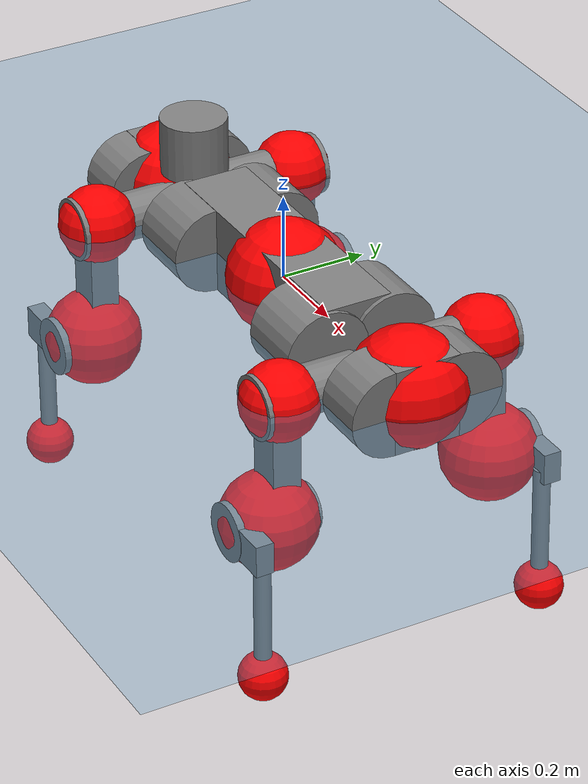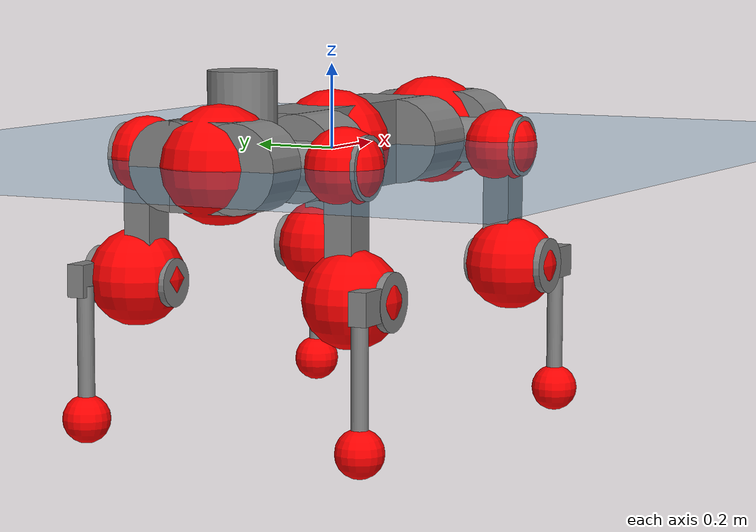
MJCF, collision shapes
<mujoco model="anymal_c">
  <compiler angle="radian" assetdir="assets" balanceinertia="true" inertiafromgeom="false"/>

  <option timestep="0.005" density="1.2" viscosity="2e-05"/>

  <size nkey="1"/>

  <visual>
    <quality shadowsize="8192"/>
    <map shadowclip="0.5"/>
  </visual>

  <default>
    <default class="/">
      <material specular="0" shininess="0.25"/>
      <geom contype="0" conaffinity="0" group="1" solref="-1000 -80"/>
      <site size="0.01 0.005 0.005" group="5"/>
      <general forcelimited="true" forcerange="-80 80" biastype="affine" gainprm="80" biasprm="0 -80 -2"/>
      <default class="anymal_c">
        <joint armature="0.01" damping="0.01" frictionloss="0.1"/>
        <default class="visual">
          <geom type="mesh" group="2"/>
          <default class="visual_zflip"/>
        </default>
        <default class="collision">
          <geom type="cylinder" group="3"/>
          <default class="foot">
            <geom size="0.03 0 0" type="sphere" condim="6" priority="1" friction="0.8 0.02 0.01" solimp="0.015 1 0.03"/>
          </default>
        </default>
      </default>
      <default class="reward_collision_sphere">
        <geom group="5" rgba="1 0 0 1"/>
      </default>
    </default>
  </default>

  <asset>
    <texture type="skybox" colorspace="auto" name="//unnamed_texture_0" builtin="gradient" rgb1="0.95 0.95 0.95" rgb2="0.95 0.95 0.95" width="100" height="600"/>
    <texture type="2d" colorspace="auto" name="texplane" builtin="checker" rgb1="0.345 0.575 0.748" rgb2="0.345 0.575 0.748" markrgb="1 1 1" width="512" height="512"/>
    <texture type="2d" colorspace="linear" name="base" file="base.png"/>
    <texture type="2d" colorspace="linear" name="top_shell" file="top_shell.png"/>
    <texture type="2d" colorspace="linear" name="bottom_shell" file="bottom_shell.png"/>
    <texture type="2d" colorspace="linear" name="remote" file="remote.png"/>
    <texture type="2d" colorspace="linear" name="hatch" file="hatch.png"/>
    <texture type="2d" colorspace="linear" name="handle" file="handle.png"/>
    <texture type="2d" colorspace="linear" name="face" file="face.png"/>
    <texture type="2d" colorspace="linear" name="battery" file="battery.png"/>
    <texture type="2d" colorspace="linear" name="lidar_cage" file="lidar_cage.png"/>
    <texture type="2d" colorspace="linear" name="depth_camera" file="depth_camera.png"/>
    <texture type="2d" colorspace="linear" name="wide_angle_camera" file="wide_angle_camera.png"/>
    <texture type="2d" colorspace="linear" name="lidar" file="lidar.png"/>
    <texture type="2d" colorspace="linear" name="drive" file="drive.png"/>
    <texture type="2d" colorspace="linear" name="hip_l" file="hip_l.png"/>
    <texture type="2d" colorspace="linear" name="shank_l" file="shank_l.png"/>
    <texture type="2d" colorspace="linear" name="foot" file="foot.png"/>
    <texture type="2d" colorspace="linear" name="thigh" file="thigh.png"/>
    <texture type="2d" colorspace="linear" name="shank_r" file="shank_r.png"/>
    <texture type="2d" colorspace="linear" name="hip_r" file="hip_r.png"/>
    <material name="MatPlane" class="/" texture="texplane" texuniform="true" texrepeat="2 2" specular="0.9" shininess="0.5"/>
    <material name="black_plastic" class="/" rgba="0.007 0.007 0.007 1"/>
    <material name="green" class="/" rgba="0.052 0.178 0.033 1"/>
    <material name="red" class="/" rgba="0.178 0.006 0.005 1"/>
    <material name="yellow" class="/" rgba="0.178 0.119 0.006 1"/>
    <material name="lwl" class="/" rgba="0.8 0.8 0.8 1"/>
    <material name="base" class="/" texture="base"/>
    <material name="top_shell" class="/" texture="top_shell"/>
    <material name="bottom_shell" class="/" texture="bottom_shell"/>
    <material name="hip_l" class="/" texture="hip_l"/>
    <material name="thigh" class="/" texture="thigh"/>
    <material name="shank_l" class="/" texture="shank_l"/>
    <material name="foot" class="/" texture="foot"/>
    <material name="hip_r" class="/" texture="hip_r"/>
    <material name="shank" class="/" texture="shank_r"/>
    <material name="hatch" class="/" texture="hatch"/>
    <material name="remote" class="/" texture="remote"/>
    <material name="handle" class="/" texture="handle"/>
    <material name="face" class="/" texture="face"/>
    <material name="depth_camera" class="/" texture="depth_camera"/>
    <material name="wide_angle_camera" class="/" texture="wide_angle_camera"/>
    <material name="battery" class="/" texture="battery"/>
    <material name="lidar_cage" class="/" texture="lidar_cage"/>
    <material name="lidar" class="/" texture="lidar"/>
    <material name="drive" class="/" texture="drive"/>
    <mesh name="base_0" class="/" file="base_0.obj"/>
    <mesh name="base_1" class="/" file="base_1.obj"/>
    <mesh name="base_2" class="/" file="base_2.obj"/>
    <mesh name="base_3" class="/" file="base_3.obj"/>
    <mesh name="base_4" class="/" file="base_4.obj"/>
    <mesh name="base_5" class="/" file="base_5.obj"/>
    <mesh name="top_shell" class="/" file="top_shell.obj"/>
    <mesh name="bottom_shell" class="/" file="bottom_shell.obj"/>
    <mesh name="remote" class="/" file="remote.obj"/>
    <mesh name="handle" class="/" file="handle.obj"/>
    <mesh name="face" class="/" file="face.obj"/>
    <mesh name="wide_angle_camera" class="/" file="wide_angle_camera.obj"/>
    <mesh name="depth_camera" class="/" file="depth_camera.obj"/>
    <mesh name="battery" class="/" file="battery.obj"/>
    <mesh name="lidar_cage" class="/" file="lidar_cage.obj"/>
    <mesh name="lidar" class="/" file="lidar.obj"/>
    <mesh name="drive" class="/" file="drive.obj"/>
    <mesh name="hip_l" class="/" file="hip_l.obj"/>
    <mesh name="thigh" class="/" file="thigh.obj"/>
    <mesh name="shank_l" class="/" file="shank_l.obj"/>
    <mesh name="foot" class="/" file="foot.obj"/>
    <mesh name="hip_r" class="/" file="hip_r.obj"/>
    <mesh name="hatch" class="/" file="hatch.obj"/>
    <mesh name="shank_r" class="/" file="shank_r.obj"/>
  </asset>

  <worldbody>
    <geom name="floor" class="/" size="100 100 0.125" type="plane" group="0" material="MatPlane"/>
    <light name="toplight_shadow" class="/" pos="0 0 5" dir="0.0990148 0.0990148 -0.990148" type="directional" ambient="0.04 0.04 0.04" diffuse="0.55 0.55 0.55" specular="0.12 0.12 0.12"/>
    <light name="toplight_fill" class="/" pos="0 0 5" dir="0.0990148 0.0990148 -0.990148" type="directional" castshadow="false" ambient="0.04 0.04 0.04" diffuse="0.3 0.3 0.3" specular="0.08 0.08 0.08"/>
    <body name="trunk" childclass="anymal_c" pos="0.00655033 0.000665664 0.00402162" quat="0.999996 0.00090791 -0.00205239 0.00163228">
      <inertial pos="0.00712682 -0.00453728 0.0483907" quat="0.527093 0.477608 0.509497 0.484228" mass="25.1816" diaginertia="1.16169 1.35865 0.18868"/>
      <joint name="//unnamed_joint_0" type="free" armature="0" damping="0" frictionloss="0"/>
      <geom name="//unnamed_geom_1" class="visual" material="green" mesh="base_0"/>
      <geom name="//unnamed_geom_2" class="visual" material="yellow" mesh="base_1"/>
      <geom name="//unnamed_geom_3" class="visual" material="red" mesh="base_2"/>
      <geom name="//unnamed_geom_4" class="visual" material="black_plastic" mesh="base_3"/>
      <geom name="//unnamed_geom_5" class="visual" material="lwl" mesh="base_4"/>
      <geom name="//unnamed_geom_6" class="visual" material="base" mesh="base_5"/>
      <geom name="trunk_1" class="collision" size="0.325995 0.0786884 0.101171" type="box"/>
      <geom name="trunk_2" class="collision" size="0.101171 0.0814987" pos="0.255737 0.0826036 0" quat="0.707107 0 0.707107 0"/>
      <geom name="trunk_3" class="collision" size="0.101171 0.0814987" pos="-0.255737 0.0826036 0" quat="0.707107 0 0.707107 0"/>
      <geom name="trunk_4" class="collision" size="0.101171 0.0814987" pos="0.255737 -0.0826036 0" quat="0.707107 0 0.707107 0"/>
      <geom name="trunk_5" class="collision" size="0.101171 0.0814987" pos="-0.255737 -0.0826036 0" quat="0.707107 0 0.707107 0"/>
      <geom name="//unnamed_geom_12" class="visual" material="top_shell" mesh="top_shell"/>
      <geom name="//unnamed_geom_13" class="visual" material="bottom_shell" mesh="bottom_shell"/>
      <geom name="//unnamed_geom_14" class="visual" material="remote" mesh="remote"/>
      <geom name="//unnamed_geom_15" class="visual" material="handle" mesh="handle"/>
      <geom name="//unnamed_geom_16" class="visual" pos="0.48737 0 0" quat="1 0 0 0" material="face" mesh="face"/>
      <geom name="trunk_6" class="collision" size="0.0618266 0.0786884 0.101171" pos="0.552039 0 0" type="box"/>
      <geom name="//unnamed_geom_18" class="collision" size="0.101171 0.0618266" pos="0.552039 0.0826036 0" quat="0.707107 0 0.707107 0"/>
      <geom name="//unnamed_geom_19" class="collision" size="0.101171 0.0618266" pos="0.552039 -0.0826036 0" quat="0.707107 0 0.707107 0"/>
      <geom name="//unnamed_geom_20" class="visual" pos="0.542802 0 -0.0284713" quat="0.965926 0 0.258819 0" material="depth_camera" mesh="depth_camera"/>
      <geom name="//unnamed_geom_21" class="visual" pos="0.603186 0 0.0152171" material="wide_angle_camera" mesh="wide_angle_camera"/>
      <geom name="//unnamed_geom_22" class="visual_zflip" pos="-0.48737 0 0" quat="0 0 0 1" material="face" mesh="face"/>
      <geom name="trunk_7" class="collision" size="0.0618266 0.0786884 0.101171" pos="-0.552039 0 0" quat="0 0 0 1" type="box"/>
      <geom name="//unnamed_geom_24" class="collision" size="0.101171 0.0618266" pos="-0.552039 -0.0826036 0" quat="0 -0.707107 0 0.707107"/>
      <geom name="//unnamed_geom_25" class="collision" size="0.101171 0.0618266" pos="-0.552039 0.0826036 0" quat="0 -0.707107 0 0.707107"/>
      <geom name="//unnamed_geom_26" class="visual" pos="-0.542802 0 -0.0284713" quat="0 -0.258819 0 0.965926" material="depth_camera" mesh="depth_camera"/>
      <geom name="//unnamed_geom_27" class="visual_zflip" pos="-0.603186 0 0.0152171" quat="0 0 0 1" material="wide_angle_camera" mesh="wide_angle_camera"/>
      <geom name="//unnamed_geom_28" class="visual" material="battery" mesh="battery"/>
      <geom name="//unnamed_geom_29" class="visual" pos="0 0.0902759 0.0307401" quat="0.683013 -0.183013 0.183013 0.683013" material="depth_camera" mesh="depth_camera"/>
      <geom name="//unnamed_geom_30" class="visual" pos="0 -0.0902759 0.0307401" quat="0.683013 0.183013 0.183013 -0.683013" material="depth_camera" mesh="depth_camera"/>
      <geom name="//unnamed_geom_31" class="visual" pos="-0.427992 0 0.0747132" quat="1 0 0 0" material="lidar_cage" mesh="lidar_cage"/>
      <geom name="trunk_8" class="collision" size="0.0786884 0.0674472" pos="-0.427992 0 0.135704"/>
      <geom name="//unnamed_geom_33" class="visual" pos="-0.427992 1.66979e-06 0.144547" quat="0.707107 0 0 -0.707107" material="lidar" mesh="lidar"/>
      <geom name="//unnamed_geom_34" class="visual" pos="0.352623 0.122667 2.82119e-09" quat="0.258819 0.965926 0 0" material="drive" mesh="drive"/>
      <geom name="//unnamed_geom_35" class="visual" pos="0.352623 -0.122667 -2.82119e-09" quat="0.258819 -0.965926 0 0" material="drive" mesh="drive"/>
      <geom name="//unnamed_geom_36" class="visual" pos="-0.352623 0.122667 -2.82119e-09" quat="0 0 0.965926 -0.258819" material="drive" mesh="drive"/>
      <geom name="//unnamed_geom_37" class="visual" pos="-0.352623 -0.122667 2.82119e-09" quat="0 0 -0.965926 -0.258819" material="drive" mesh="drive"/>
      <geom name="//unnamed_geom_38" class="visual" pos="0.136393 0 0.0742049" quat="1 0 0 0" material="hatch" mesh="hatch"/>
      <geom name="//unnamed_geom_39" class="reward_collision_sphere" size="0.134894"/>
      <geom name="//unnamed_geom_40" class="reward_collision_sphere" size="0.134894" pos="0.529111 0 0"/>
      <geom name="//unnamed_geom_41" class="reward_collision_sphere" size="0.134894" pos="-0.529111 0 0"/>
      <site name="imu" pos="0.269494 0.0685609 0.0581956" size="0.0112412"/>
      <camera name="track" pos="0 -2.3601 0" quat="0.707107 0.707107 0 0" mode="trackcom"/>
      <camera name="ego_camera" pos="0.529111 0 -0.0406602" quat="-0.5 -0.5 0.5 0.5"/>
      <body name="LF_HIP" pos="0.354348 0.122619 0.00441438" quat="0.257186 0.966347 -0.00363528 0.00402246">
        <inertial pos="0.0708199 -0.0161447 -0.00739478" quat="-0.139731 0.728719 -0.118998 0.65976" mass="3.47193" diaginertia="0.0114636 0.00997222 0.00296383"/>
        <joint name="LF_HAA" pos="0 0 0" axis="0.999744 -0.0213654 0.00746079" range="-0.912996 0.464436" armature="0.00692956" damping="0.0219529" frictionloss="0.10931"/>
        <geom name="//unnamed_geom_42" class="visual" pos="0 0.000165958 -2.72585e-05" quat="0.258819 -0.965926 0 0" material="hip_l" mesh="hip_l"/>
        <geom name="//unnamed_geom_43" class="visual" pos="0.0704305 -0.0853394 -0.0480611" quat="0.183013 -0.683013 0.683013 0.183013" material="drive" mesh="drive"/>
        <geom name="//unnamed_geom_44" class="collision" size="0.056206 0.0786884" pos="0.0704305 -0.0141132 -0.00701897" quat="-0.353553 -0.612372 0.612372 -0.353553"/>
        <body name="LF_THIGH" pos="0.0699257 -0.0850059 -0.0425548" quat="0.183954 -0.682791 0.682905 0.183298">
          <inertial pos="0.0348943 0.00984507 -0.237958" quat="0.99267 -0.00995261 -0.081751 0.0884478" mass="4.43741" diaginertia="0.069611 0.0737284 0.00463458"/>
          <joint name="LF_HFE" pos="0 0 0" axis="0.999998 -0.00148731 -0.000941466" range="-3.14916 2.91736" armature="0.0138808" damping="0.0623338" frictionloss="0.11408"/>
          <geom name="//unnamed_geom_45" class="visual" pos="-8.45624e-05 -1.3325e-07 0" quat="0.707107 0 0 -0.707107" material="thigh" mesh="thigh"/>
          <geom name="//unnamed_geom_46" class="collision" size="0.0730678 0.0449648" pos="0.0470321 0 0" quat="0.5 0.5 -0.5 -0.5"/>
          <geom name="//unnamed_geom_47" class="collision" size="0.0421545 0.0337236 0.158854" pos="0.0352741 0 -0.143646" quat="0.707107 0 0 -0.707107" type="box"/>
          <geom name="//unnamed_geom_48" class="visual" pos="0.117933 0 -0.289704" quat="1 0 0 0" material="drive" mesh="drive"/>
          <geom name="//unnamed_geom_49" class="collision" size="0.056206 0.0786884" pos="0.0356268 0 -0.289704" quat="0.707107 0 0.707107 0"/>
          <geom name="//unnamed_geom_50" class="reward_collision_sphere" size="0.0899296" pos="0.029395 0 0"/>
          <body name="LF_SHANK" pos="0.106063 -0.0105456 -0.295853" quat="1 7.20182e-05 7.61699e-06 -2.89152e-05">
            <inertial pos="0.00783784 -0.0676674 -0.0880875" quat="0.992944 -0.116102 -0.00315416 -0.0239457" mass="0.74991" diaginertia="0.0215051 0.021722 0.00124727"/>
            <joint name="LF_KFE" pos="0 0 0" axis="0.999952 0.00244992 -0.0095095" stiffness="0.0550544" range="-3.25954 3.31813" armature="0.011507" damping="0.0115882" frictionloss="0.107328"/>
            <geom name="//unnamed_geom_51" class="visual" pos="-2.75739e-05 -0.000147026 0" quat="0.707107 0 0 -0.707107" material="shank_l" mesh="shank_l"/>
            <geom name="LF_kfe_act" class="collision" size="0.0674472 0.0224824" pos="0.023516 0 0" quat="0.5 0.5 -0.5 -0.5"/>
            <geom name="//unnamed_geom_53" class="collision" size="0.0646358 0.037939 0.0213583" pos="0.023516 -0.0678518 0" quat="0.5 0.5 -0.5 -0.5" type="box"/>
            <geom name="//unnamed_geom_54" class="visual" pos="0.0153442 -0.103833 -0.343548" quat="0.382683 0 0 -0.92388" material="foot" mesh="foot"/>
            <geom name="LF_calf" class="collision" size="0.0196721 0.158784" pos="0.0153442 -0.103786 -0.171774" quat="0.707107 0 0 -0.707107"/>
            <geom name="LF_foot" class="foot" size="0.0465598" pos="0.0153442 -0.103786 -0.320677" quat="0.707107 0 0 -0.707107"/>
            <geom name="//unnamed_geom_57" class="reward_collision_sphere" size="0.112412" pos="-0.0587901 0 0"/>
            <geom name="//unnamed_geom_58" class="reward_collision_sphere" size="0.056206" pos="0.0153442 -0.103786 -0.320677"/>
            <site name="LF_foot" class="foot" pos="0.0153442 -0.103786 -0.320677" quat="0.707107 0 0 -0.707107" size="0.0112412"/>
          </body>
        </body>
      </body>
      <body name="RF_HIP" pos="0.348928 -0.126796 -0.010188" quat="0.258844 -0.965919 -8.78298e-06 0.00019234">
        <inertial pos="0.067765 0.0241832 -0.00693523" quat="0.13574 0.682632 0.0789745 0.713688" mass="3.4106" diaginertia="0.0120731 0.00944904 0.00311482"/>
        <joint name="RF_HAA" pos="0 0 0" axis="1 -0.000165865 -0.000100514" range="-0.627127 0.749101" armature="0.0109455" damping="0.0180294" frictionloss="0.101508"/>
        <geom name="//unnamed_geom_59" class="visual" pos="0 -0.000165957 -2.72584e-05" quat="0.258819 0.965926 0 0" material="hip_r" mesh="hip_r"/>
        <geom name="//unnamed_geom_60" class="visual" pos="0.0704305 0.0853394 -0.0480611" quat="0.183013 0.683013 0.683013 -0.183013" material="drive" mesh="drive"/>
        <geom name="//unnamed_geom_61" class="collision" size="0.056206 0.0786884" pos="0.0704305 0.0141132 -0.00701897" quat="-0.353553 0.612372 0.612372 0.353553"/>
        <body name="RF_THIGH" pos="0.0668522 0.0828604 -0.0349328" quat="0.182633 0.683655 0.682557 -0.182695">
          <inertial pos="0.0361873 -0.000268013 -0.239263" quat="0.994102 0.0278365 -0.0964515 0.0410348" mass="3.73186" diaginertia="0.0624837 0.0594261 0.0039446"/>
          <joint name="RF_HFE" pos="0 0 0" axis="0.999828 -0.0021759 0.0184242" stiffness="0.0125517" range="-2.93667 2.98711" armature="0.015196" damping="0.0103952" frictionloss="0.110076"/>
          <geom name="//unnamed_geom_62" class="visual" pos="-8.45624e-05 -1.3325e-07 0" quat="0.707107 0 0 -0.707107" material="thigh" mesh="thigh"/>
          <geom name="//unnamed_geom_63" class="collision" size="0.0730678 0.0449648" pos="0.0470321 0 0" quat="0.5 0.5 0.5 0.5"/>
          <geom name="//unnamed_geom_64" class="collision" size="0.0421545 0.0337236 0.158854" pos="0.0352741 0 -0.143646" quat="0.707107 0 0 0.707107" type="box"/>
          <geom name="//unnamed_geom_65" class="visual" pos="0.117933 0 -0.289704" quat="1 0 0 0" material="drive" mesh="drive"/>
          <geom name="//unnamed_geom_66" class="collision" size="0.056206 0.0786884" pos="0.0356268 0 -0.289704" quat="0.707107 0 0.707107 0"/>
          <geom name="//unnamed_geom_67" class="reward_collision_sphere" size="0.0899296" pos="0.029395 0 0"/>
          <body name="RF_SHANK" pos="0.117238 0.00162488 -0.290349" quat="1 0.000137229 0.000123304 8.67176e-05">
            <inertial pos="0.00652389 0.0742916 -0.094069" quat="0.99079 0.128399 0.00500539 0.04271" mass="1.05081" diaginertia="0.0253461 0.0208223 0.00156403"/>
            <joint name="RF_KFE" pos="0 0 0" axis="0.99995 0.00893314 -0.00450464" range="-3.0829 3.22614" armature="0.00728558" damping="0.00593856" frictionloss="0.112755"/>
            <geom name="//unnamed_geom_68" class="visual" pos="-2.75738e-05 0.000147025 0" quat="0.707107 0 0 0.707107" material="shank" mesh="shank_r"/>
            <geom name="RF_kfe_act" class="collision" size="0.0674472 0.0224824" pos="0.023516 0 0" quat="0.5 0.5 0.5 0.5"/>
            <geom name="//unnamed_geom_70" class="collision" size="0.0646358 0.037939 0.0213583" pos="0.023516 0.0678518 0" quat="0.5 0.5 0.5 0.5" type="box"/>
            <geom name="//unnamed_geom_71" class="visual" pos="0.0153442 0.103833 -0.343548" quat="0.382683 0 0 0.92388" material="foot" mesh="foot"/>
            <geom name="RF_calf" class="collision" size="0.0196721 0.158784" pos="0.0153442 0.103786 -0.171774" quat="0.707107 0 0 0.707107"/>
            <geom name="RF_foot" class="foot" size="0.0313481" pos="0.0153442 0.103786 -0.320677" quat="0.707107 0 0 0.707107"/>
            <geom name="//unnamed_geom_74" class="reward_collision_sphere" size="0.112412" pos="-0.0587901 0 0"/>
            <geom name="//unnamed_geom_75" class="reward_collision_sphere" size="0.056206" pos="0.0153442 0.103786 -0.320677"/>
            <site name="RF_foot" class="foot" pos="0.0153442 0.103786 -0.320677" quat="0.707107 0 0 0.707107" size="0.0112412"/>
          </body>
        </body>
      </body>
      <body name="LH_HIP" pos="-0.352535 0.126419 0.00976844" quat="-0.000486047 1.55531e-05 0.965789 -0.259327">
        <inertial pos="0.0683324 0.016457 0.00110888" quat="0.136693 0.681554 0.128256 0.707354" mass="3.43523" diaginertia="0.0115894 0.0119589 0.00359168"/>
        <joint name="LH_HAA" pos="0 0 0" axis="0.999998 0.00103215 0.00195061" range="-0.717395 0.531371" armature="0.0110322" damping="0.0342808" frictionloss="0.0594946"/>
        <geom name="//unnamed_geom_76" class="visual" pos="0 -0.000165957 -2.72584e-05" quat="-0.258819 -0.965926 0 0" material="hip_r" mesh="hip_r"/>
        <geom name="//unnamed_geom_77" class="visual" pos="0.0704305 0.0853394 -0.0480611" quat="0.183013 0.683013 0.683013 -0.183013" material="drive" mesh="drive"/>
        <geom name="//unnamed_geom_78" class="collision" size="0.056206 0.0786884" pos="0.0704305 0.0141132 -0.00701897" quat="-0.353553 0.612372 0.612372 0.353553"/>
        <body name="LH_THIGH" pos="0.0713417 0.0865642 -0.0415397" quat="0.182946 0.683438 0.682685 -0.182712">
          <inertial pos="0.0453369 0.000341002 -0.238064" quat="0.993584 0.0166528 -0.0990049 0.0520674" mass="4.19304" diaginertia="0.0738141 0.0673414 0.00489931"/>
          <joint name="LH_HFE" pos="0 0 0" axis="0.998969 -0.030089 -0.0339843" stiffness="0.00813252" range="-2.95294 3.13992" armature="0.00998046" damping="0.00118065" frictionloss="0.102956"/>
          <geom name="//unnamed_geom_79" class="visual" pos="-8.45624e-05 -1.3325e-07 0" quat="0.707107 0 0 -0.707107" material="thigh" mesh="thigh"/>
          <geom name="//unnamed_geom_80" class="collision" size="0.0730678 0.0449648" pos="0.0470321 0 0" quat="0.5 0.5 -0.5 -0.5"/>
          <geom name="//unnamed_geom_81" class="collision" size="0.0421545 0.0337236 0.158854" pos="0.0352741 0 -0.143646" quat="0.707107 0 0 -0.707107" type="box"/>
          <geom name="//unnamed_geom_82" class="visual" pos="0.117933 0 -0.289704" quat="1 0 0 0" material="drive" mesh="drive"/>
          <geom name="//unnamed_geom_83" class="collision" size="0.056206 0.0786884" pos="0.0356268 0 -0.289704" quat="0.707107 0 0.707107 0"/>
          <geom name="//unnamed_geom_84" class="reward_collision_sphere" size="0.0899296" pos="0.029395 0 0"/>
          <body name="LH_SHANK" pos="0.123119 -0.003096 -0.28273" quat="0.999999 -0.000552101 -0.000749631 0.000551606">
            <inertial pos="0.00168404 0.077438 -0.0879233" quat="0.995888 0.0831921 0.0190519 0.0303724" mass="0.920091" diaginertia="0.0229158 0.0206684 0.00126107"/>
            <joint name="LH_KFE" pos="0 0 0" axis="0.999787 -0.0161793 0.0128389" stiffness="0.0585706" range="-3.17951 3.14193" armature="0.0111762" damping="0.0140185" frictionloss="0.0846034"/>
            <geom name="//unnamed_geom_85" class="visual" pos="-2.75738e-05 0.000147025 0" quat="-0.707107 0 0 -0.707107" material="shank" mesh="shank_r"/>
            <geom name="LH_kfe_act" class="collision" size="0.0674472 0.0224824" pos="0.023516 0 0" quat="0.5 0.5 -0.5 -0.5"/>
            <geom name="//unnamed_geom_87" class="collision" size="0.0646358 0.037939 0.0213583" pos="0.023516 0.0678518 0" quat="0.5 0.5 -0.5 -0.5" type="box"/>
            <geom name="//unnamed_geom_88" class="visual" pos="0.0153442 0.103833 -0.343548" quat="-0.382683 0 0 -0.92388" material="foot" mesh="foot"/>
            <geom name="LH_calf" class="collision" size="0.0196721 0.158784" pos="0.0153442 0.103786 -0.171774" quat="0.707107 0 0 -0.707107"/>
            <geom name="LH_foot" class="foot" size="0.0306598" pos="0.0153442 0.103786 -0.320677" quat="0.707107 0 0 -0.707107"/>
            <geom name="//unnamed_geom_91" class="reward_collision_sphere" size="0.112412" pos="-0.0587901 0 0"/>
            <geom name="//unnamed_geom_92" class="reward_collision_sphere" size="0.056206" pos="0.0153442 0.103786 -0.320677"/>
            <site name="LH_foot" class="foot" pos="0.0153442 0.103786 -0.320677" quat="0.707107 0 0 -0.707107" size="0.0112412"/>
          </body>
        </body>
      </body>
      <body name="RH_HIP" pos="-0.35244 -0.121452 -0.00422308" quat="0.000533446 0.000991703 -0.966047 -0.258364">
        <inertial pos="0.0682828 -0.0272655 -0.00192693" quat="-0.12816 0.710592 -0.135969 0.678341" mass="4.31748" diaginertia="0.0149323 0.0128188 0.00404922"/>
        <joint name="RH_HAA" pos="0 0 0" axis="0.99996 0.00876253 -0.00183721" stiffness="0.00273805" range="-0.768659 0.647663" armature="0.0135457" damping="0.0498598" frictionloss="0.099942"/>
        <geom name="//unnamed_geom_93" class="visual" pos="0 0.000165958 -2.72585e-05" quat="-0.258819 0.965926 0 0" material="hip_l" mesh="hip_l"/>
        <geom name="//unnamed_geom_94" class="visual" pos="0.0704305 -0.0853394 -0.0480611" quat="-0.183013 0.683013 -0.683013 -0.183013" material="drive" mesh="drive"/>
        <geom name="//unnamed_geom_95" class="collision" size="0.056206 0.0786884" pos="0.0704305 -0.0141132 -0.00701897" quat="0.353553 0.612372 -0.612372 0.353553"/>
        <body name="RH_THIGH" pos="0.070468 -0.0883069 -0.0527047" quat="-0.18285 0.682838 -0.683348 -0.182575">
          <inertial pos="0.0416298 -0.00655728 -0.249198" quat="0.993182 -0.00519558 -0.0803014 0.0843423" mass="5.28246" diaginertia="0.0716412 0.0741428 0.00450697"/>
          <joint name="RH_HFE" pos="0 0 0" axis="0.999938 -0.00884897 0.00672535" range="-2.93731 2.95402" armature="0.0118951" damping="0.00520433" frictionloss="0.158317"/>
          <geom name="//unnamed_geom_96" class="visual" pos="-8.45624e-05 -1.3325e-07 0" quat="0.707107 0 0 -0.707107" material="thigh" mesh="thigh"/>
          <geom name="//unnamed_geom_97" class="collision" size="0.0730678 0.0449648" pos="0.0470321 0 0" quat="0.5 0.5 0.5 0.5"/>
          <geom name="//unnamed_geom_98" class="collision" size="0.0421545 0.0337236 0.158854" pos="0.0352741 0 -0.143646" quat="0.707107 0 0 0.707107" type="box"/>
          <geom name="//unnamed_geom_99" class="visual" pos="0.117933 0 -0.289704" quat="1 0 0 0" material="drive" mesh="drive"/>
          <geom name="//unnamed_geom_100" class="collision" size="0.056206 0.0786884" pos="0.0356268 0 -0.289704" quat="0.707107 0 0.707107 0"/>
          <geom name="//unnamed_geom_101" class="reward_collision_sphere" size="0.0899296" pos="0.029395 0 0"/>
          <body name="RH_SHANK" pos="0.10754 -0.00093519 -0.292022" quat="1 0.000134816 7.28865e-05 -0.000159795">
            <inertial pos="0.00437706 -0.0716591 -0.0829079" quat="0.993204 -0.113839 -0.00212435 -0.0241369" mass="0.977818" diaginertia="0.0246356 0.0223304 0.00133158"/>
            <joint name="RH_KFE" pos="0 0 0" axis="0.999747 0.020434 0.0093593" stiffness="0.0222529" range="-3.10751 3.04223" armature="0.0130535" damping="0.0583423" frictionloss="0.102843"/>
            <geom name="//unnamed_geom_102" class="visual" pos="-2.75739e-05 -0.000147026 0" quat="0.707107 0 0 -0.707107" material="shank_l" mesh="shank_l"/>
            <geom name="RH_kfe_act" class="collision" size="0.0674472 0.0224824" pos="0.023516 0 0" quat="0.5 0.5 0.5 0.5"/>
            <geom name="//unnamed_geom_104" class="collision" size="0.0646358 0.037939 0.0213583" pos="0.023516 -0.0678518 0" quat="0.5 0.5 0.5 0.5" type="box"/>
            <geom name="//unnamed_geom_105" class="visual" pos="0.0153442 -0.103833 -0.343548" quat="0.382683 0 0 -0.92388" material="foot" mesh="foot"/>
            <geom name="RH_calf" class="collision" size="0.0196721 0.158784" pos="0.0153442 -0.103786 -0.171774" quat="0.707107 0 0 0.707107"/>
            <geom name="RH_foot" class="foot" size="0.0331341" pos="0.0153442 -0.103786 -0.320677" quat="0.707107 0 0 0.707107"/>
            <geom name="//unnamed_geom_108" class="reward_collision_sphere" size="0.112412" pos="-0.0587901 0 0"/>
            <geom name="//unnamed_geom_109" class="reward_collision_sphere" size="0.056206" pos="0.0153442 -0.103786 -0.320677"/>
            <site name="RH_foot" class="foot" pos="0.0153442 -0.103786 -0.320677" quat="0.707107 0 0 0.707107" size="0.0112412"/>
          </body>
        </body>
      </body>
    </body>
  </worldbody>

  <contact>
    <pair class="/" geom1="floor" geom2="LF_foot" name="//unnamed_contact_0"/>
    <pair class="/" geom1="floor" geom2="RF_foot" name="//unnamed_contact_1"/>
    <pair class="/" geom1="floor" geom2="LH_foot" name="//unnamed_contact_2"/>
    <pair class="/" geom1="floor" geom2="RH_foot" name="//unnamed_contact_3"/>
  </contact>

  <actuator>
    <general name="LF_HAA" class="/" joint="LF_HAA" forcerange="-91.4072 91.4072" gainprm="94.0771" biasprm="0 -94.0771 -1.74167"/>
    <general name="LF_HFE" class="/" joint="LF_HFE" forcerange="-61.4228 61.4228" gainprm="94.0771" biasprm="0 -94.0771 -1.74167"/>
    <general name="LF_KFE" class="/" joint="LF_KFE" forcerange="-122.092 122.092" gainprm="94.0771" biasprm="0 -94.0771 -1.74167"/>
    <general name="RF_HAA" class="/" joint="RF_HAA" forcerange="-95.6051 95.6051" gainprm="94.0771" biasprm="0 -94.0771 -1.74167"/>
    <general name="RF_HFE" class="/" joint="RF_HFE" forcerange="-72.5588 72.5588" gainprm="94.0771" biasprm="0 -94.0771 -1.74167"/>
    <general name="RF_KFE" class="/" joint="RF_KFE" forcerange="-49.0459 49.0459" gainprm="94.0771" biasprm="0 -94.0771 -1.74167"/>
    <general name="LH_HAA" class="/" joint="LH_HAA" forcerange="-57.1343 57.1343" gainprm="94.0771" biasprm="0 -94.0771 -1.74167"/>
    <general name="LH_HFE" class="/" joint="LH_HFE" forcerange="-77.5221 77.5221" gainprm="94.0771" biasprm="0 -94.0771 -1.74167"/>
    <general name="LH_KFE" class="/" joint="LH_KFE" forcerange="-101.479 101.479" gainprm="94.0771" biasprm="0 -94.0771 -1.74167"/>
    <general name="RH_HAA" class="/" joint="RH_HAA" forcerange="-90.2368 90.2368" gainprm="94.0771" biasprm="0 -94.0771 -1.74167"/>
    <general name="RH_HFE" class="/" joint="RH_HFE" forcerange="-128.323 128.323" gainprm="94.0771" biasprm="0 -94.0771 -1.74167"/>
    <general name="RH_KFE" class="/" joint="RH_KFE" forcerange="-116.255 116.255" gainprm="94.0771" biasprm="0 -94.0771 -1.74167"/>
  </actuator>

  <sensor>
    <gyro site="imu" name="imu_angular_velocity"/>
    <velocimeter site="imu" name="imu_linear_velocity"/>
    <framelinvel objtype="site" objname="LF_foot" name="LF_foot_global_linear_velocity"/>
    <framelinvel objtype="site" objname="RF_foot" name="RF_foot_global_linear_velocity"/>
    <framelinvel objtype="site" objname="LH_foot" name="LH_foot_global_linear_velocity"/>
    <framelinvel objtype="site" objname="RH_foot" name="RH_foot_global_linear_velocity"/>
  </sensor>

  <keyframe>
    <key name="home" qpos="0 0 0.55 1 0 0 0 0 0.4 -0.8 0 -0.4 0.8 0 -0.4 0.8 0 0.4 -0.8"/>
  </keyframe>
</mujoco>
